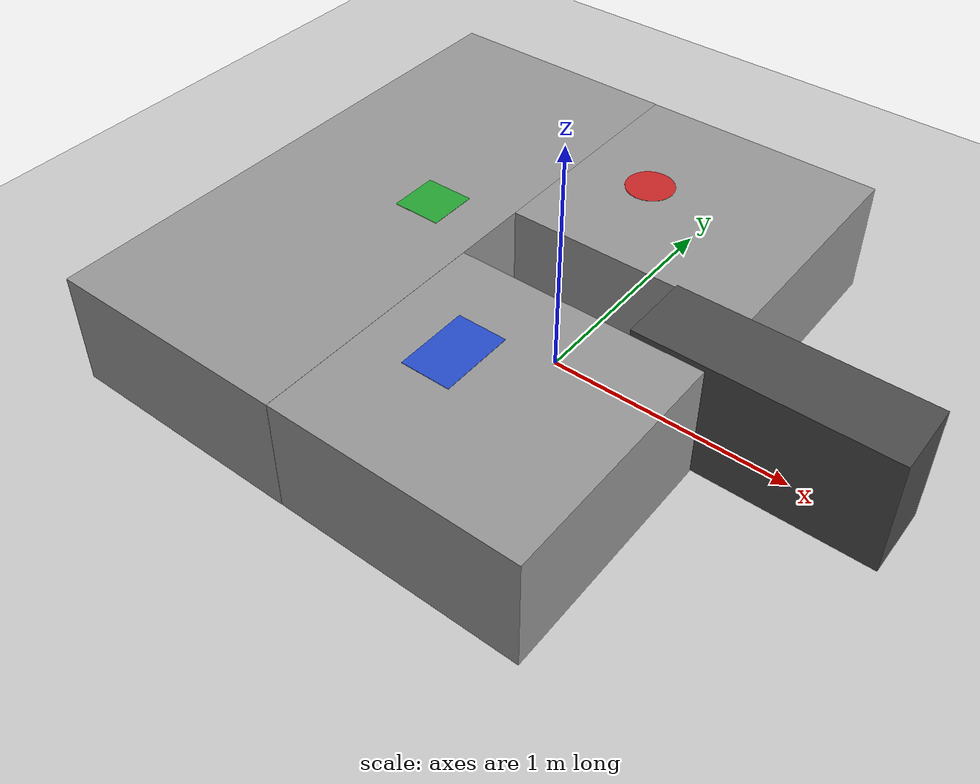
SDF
<sdf version="1.7">
 <world name="default">
  <gravity>0 0 -9.8</gravity>
  <model name="ground_plane">
   <static>1</static>
   <link name="link">
    <collision name="collision">
     <geometry><plane><normal>0 0 1</normal><size>100 100</size></plane></geometry>
     <surface><friction><ode><mu>100</mu><mu2>50</mu2></ode></friction></surface>
    </collision>
    <visual name="visual">
     <cast_shadows>0</cast_shadows>
     <geometry><plane><normal>0 0 1</normal><size>100 100</size></plane></geometry>
     <material>
      <script><uri>file://media/materials/scripts/gazebo.material</uri><name>Gazebo/Grey</name></script>
     </material>
    </visual>
   </link>
  </model>
  <light name="sun" type="directional">
   <pose>0 0 10 0 -0 0</pose>
   <diffuse>0.8 0.8 0.8 1</diffuse>
   <specular>0.2 0.2 0.2 1</specular>
   <attenuation>
    <range>1000</range>
    <constant>0.9</constant>
    <linear>0.01</linear>
    <quadratic>0.001</quadratic>
   </attenuation>
   <direction>-0.5 0.1 -0.9</direction>
   <spot><inner_angle>0</inner_angle><outer_angle>0</outer_angle><falloff>0</falloff></spot>
  </light>
  <scene><shadows>0</shadows><ambient>0.4 0.4 0.4 1</ambient><background>0.7 0.7 0.7 1</background></scene>
  <plugin name="gazebo_link_attacher" filename="libgazebo_link_attacher.so"/>
  <plugin name="gazebo_ros_state" filename="libgazebo_ros_state.so">
   <ros><namespace>/</namespace></ros>
   <update_rate>10.0</update_rate>
  </plugin>
  <magnetic_field>6e-06 2.3e-05 -4.2e-05</magnetic_field>
  <atmosphere type="adiabatic"/>
  <physics type="ode">
   <max_step_size>0.001</max_step_size>
   <real_time_factor>1</real_time_factor>
   <real_time_update_rate>1000</real_time_update_rate>
  </physics>
  <audio><device>default</device></audio>
  <spherical_coordinates>
   <surface_model>EARTH_WGS84</surface_model>
   <latitude_deg>0</latitude_deg>
   <longitude_deg>0</longitude_deg>
   <elevation>0</elevation>
   <heading_deg>0</heading_deg>
  </spherical_coordinates>
  <model name="conveyor_belt">
   <static>1</static>
   <pose>0.9 0 0.25 0 -0 0</pose>
   <link name="link">
    <collision name="collision"><geometry><box><size>1 0.3 0.5</size></box></geometry></collision>
    <visual name="visual">
     <geometry><box><size>1 0.3 0.5</size></box></geometry>
     <material>
      <script><name>Gazebo/DarkGrey</name><uri>file://media/materials/scripts/gazebo.material</uri></script>
     </material>
    </visual>
   </link>
  </model>
  <model name="zone_1">
   <static>1</static>
   <pose>0 0.6 0.5 0 -0 0</pose>
   <link name="link">
    <visual name="visual">
     <geometry><cylinder><radius>0.1</radius><length>0.002</length></cylinder></geometry>
     <material>
      <script><name>Gazebo/Red</name><uri>file://media/materials/scripts/gazebo.material</uri></script>
     </material>
    </visual>
   </link>
  </model>
  <model name="zone_2">
   <static>1</static>
   <pose>-0.6 0 0.5 0 -0 0</pose>
   <link name="link">
    <visual name="visual">
     <geometry><box><size>0.2 0.2 0.002</size></box></geometry>
     <material>
      <script><name>Gazebo/Green</name><uri>file://media/materials/scripts/gazebo.material</uri></script>
     </material>
    </visual>
   </link>
  </model>
  <model name="zone_3">
   <static>1</static>
   <pose>0 -0.6 0.5 0 -0 0</pose>
   <link name="link">
    <visual name="visual">
     <geometry><box><size>0.2 0.3 0.002</size></box></geometry>
     <material>
      <script><name>Gazebo/Blue</name><uri>file://media/materials/scripts/gazebo.material</uri></script>
     </material>
    </visual>
   </link>
  </model>
  <model name="mesa3">
   <link name="link">
    <inertial>
     <mass>1</mass>
     <inertia>
      <ixx>0.166667</ixx>
      <ixy>0</ixy>
      <ixz>0</ixz>
      <iyy>0.166667</iyy>
      <iyz>0</iyz>
      <izz>0.166667</izz>
     </inertia>
    </inertial>
    <visual name="visual">
     <geometry><box><size>1.01676 2.30301 0.481911</size></box></geometry>
     <material>
      <script><name>Gazebo/Grey</name><uri>file://media/materials/scripts/gazebo.material</uri></script>
      <shader type="pixel"><normal_map>__default__</normal_map></shader>
      <ambient>1 1 1 1</ambient>
      <diffuse>0.7 0.7 0.7 1</diffuse>
      <specular>0.01 0.01 0.01 1</specular>
      <emissive>0 0 0 1</emissive>
     </material>
    </visual>
    <collision name="collision">
     <geometry><box><size>1.01676 2.30301 0.481911</size></box></geometry>
     <surface>
      <friction>
       <ode><mu>1</mu><mu2>1</mu2><fdir1>0 0 0</fdir1><slip1>0</slip1><slip2>0</slip2></ode>
       <torsional>
        <coefficient>1</coefficient>
        <patch_radius>0</patch_radius>
        <surface_radius>0</surface_radius>
        <use_patch_radius>1</use_patch_radius>
        <ode><slip>0</slip></ode>
       </torsional>
      </friction>
      <bounce><restitution_coefficient>0</restitution_coefficient><threshold>1e+06</threshold></bounce>
      <contact>
       <collide_without_contact>0</collide_without_contact>
       <collide_without_contact_bitmask>1</collide_without_contact_bitmask>
       <collide_bitmask>1</collide_bitmask>
       <ode>
        <soft_cfm>0</soft_cfm>
        <soft_erp>0.2</soft_erp>
        <kp>1e+13</kp>
        <kd>1</kd>
        <max_vel>0.01</max_vel>
        <min_depth>0</min_depth>
       </ode>
       <bullet>
        <split_impulse>1</split_impulse>
        <split_impulse_penetration_threshold>-0.01</split_impulse_penetration_threshold>
        <soft_cfm>0</soft_cfm>
        <soft_erp>0.2</soft_erp>
        <kp>1e+13</kp>
        <kd>1</kd>
       </bullet>
      </contact>
     </surface>
    </collision>
   </link>
   <static>0</static>
   <pose>-0.830923 0.000494 0.240951 0 -9e-06 0.000174</pose>
  </model>
  <model name="mesa2">
   <link name="link">
    <inertial>
     <mass>1</mass>
     <inertia>
      <ixx>0.166667</ixx>
      <ixy>0</ixy>
      <ixz>0</ixz>
      <iyy>0.166667</iyy>
      <iyz>0</iyz>
      <izz>0.166667</izz>
     </inertia>
    </inertial>
    <visual name="visual">
     <geometry><box><size>1.01676 0.994598 0.481911</size></box></geometry>
     <material>
      <script><name>Gazebo/Grey</name><uri>file://media/materials/scripts/gazebo.material</uri></script>
      <shader type="pixel"><normal_map>__default__</normal_map></shader>
      <ambient>1 1 1 1</ambient>
      <diffuse>0.7 0.7 0.7 1</diffuse>
      <specular>0.01 0.01 0.01 1</specular>
      <emissive>0 0 0 1</emissive>
     </material>
    </visual>
    <collision name="collision">
     <geometry><box><size>1.01676 0.994598 0.481911</size></box></geometry>
     <surface>
      <friction>
       <ode><mu>1</mu><mu2>1</mu2><fdir1>0 0 0</fdir1><slip1>0</slip1><slip2>0</slip2></ode>
       <torsional>
        <coefficient>1</coefficient>
        <patch_radius>0</patch_radius>
        <surface_radius>0</surface_radius>
        <use_patch_radius>1</use_patch_radius>
        <ode><slip>0</slip></ode>
       </torsional>
      </friction>
      <bounce><restitution_coefficient>0</restitution_coefficient><threshold>1e+06</threshold></bounce>
      <contact>
       <collide_without_contact>0</collide_without_contact>
       <collide_without_contact_bitmask>1</collide_without_contact_bitmask>
       <collide_bitmask>1</collide_bitmask>
       <ode>
        <soft_cfm>0</soft_cfm>
        <soft_erp>0.2</soft_erp>
        <kp>1e+13</kp>
        <kd>1</kd>
        <max_vel>0.01</max_vel>
        <min_depth>0</min_depth>
       </ode>
       <bullet>
        <split_impulse>1</split_impulse>
        <split_impulse_penetration_threshold>-0.01</split_impulse_penetration_threshold>
        <soft_cfm>0</soft_cfm>
        <soft_erp>0.2</soft_erp>
        <kp>1e+13</kp>
        <kd>1</kd>
       </bullet>
      </contact>
     </surface>
    </collision>
   </link>
   <static>0</static>
   <pose>0.186702 -0.652685 0.240951 0 -9e-06 0.000174</pose>
  </model>
  <model name="mesa1">
   <link name="link">
    <inertial>
     <mass>1</mass>
     <inertia>
      <ixx>0.166667</ixx>
      <ixy>0</ixy>
      <ixz>0</ixz>
      <iyy>0.166667</iyy>
      <iyz>0</iyz>
      <izz>0.166667</izz>
     </inertia>
    </inertial>
    <visual name="visual">
     <geometry><box><size>1.01676 0.994598 0.481911</size></box></geometry>
     <material>
      <script><name>Gazebo/Grey</name><uri>file://media/materials/scripts/gazebo.material</uri></script>
      <shader type="pixel"><normal_map>__default__</normal_map></shader>
      <ambient>1 1 1 1</ambient>
      <diffuse>0.7 0.7 0.7 1</diffuse>
      <specular>0.01 0.01 0.01 1</specular>
      <emissive>0 0 0 1</emissive>
     </material>
    </visual>
    <collision name="collision">
     <geometry><box><size>1.01676 0.994598 0.481911</size></box></geometry>
     <surface>
      <friction>
       <ode><mu>1</mu><mu2>1</mu2><fdir1>0 0 0</fdir1><slip1>0</slip1><slip2>0</slip2></ode>
       <torsional>
        <coefficient>1</coefficient>
        <patch_radius>0</patch_radius>
        <surface_radius>0</surface_radius>
        <use_patch_radius>1</use_patch_radius>
        <ode><slip>0</slip></ode>
       </torsional>
      </friction>
      <bounce><restitution_coefficient>0</restitution_coefficient><threshold>1e+06</threshold></bounce>
      <contact>
       <collide_without_contact>0</collide_without_contact>
       <collide_without_contact_bitmask>1</collide_without_contact_bitmask>
       <collide_bitmask>1</collide_bitmask>
       <ode>
        <soft_cfm>0</soft_cfm>
        <soft_erp>0.2</soft_erp>
        <kp>1e+13</kp>
        <kd>1</kd>
        <max_vel>0.01</max_vel>
        <min_depth>0</min_depth>
       </ode>
       <bullet>
        <split_impulse>1</split_impulse>
        <split_impulse_penetration_threshold>-0.01</split_impulse_penetration_threshold>
        <soft_cfm>0</soft_cfm>
        <soft_erp>0.2</soft_erp>
        <kp>1e+13</kp>
        <kd>1</kd>
       </bullet>
      </contact>
     </surface>
    </collision>
   </link>
   <static>0</static>
   <pose>0.179989 0.653134 0.240951 0 -9e-06 0.000174</pose>
  </model>
 </world>
</sdf>
